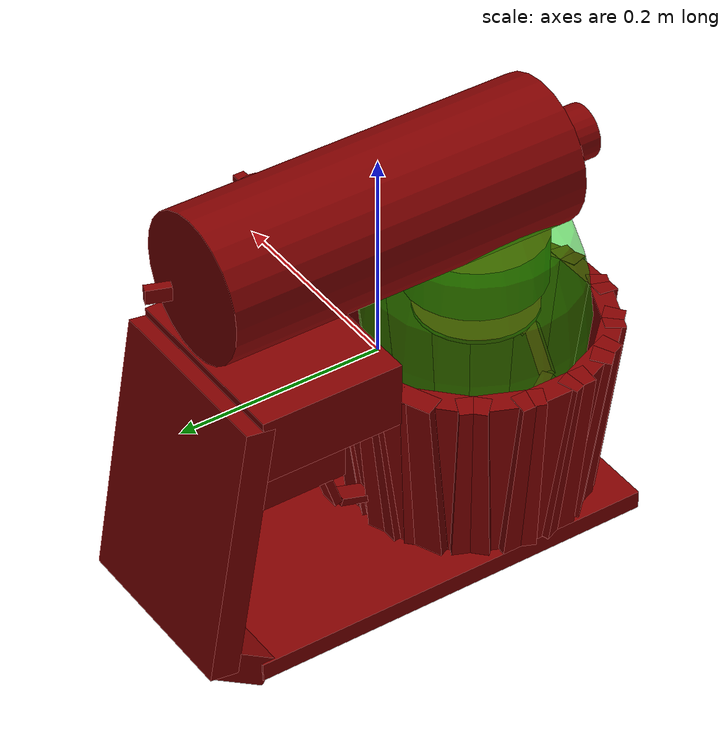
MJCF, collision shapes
<?xml version='1.0' encoding='UTF-8'?>
<mujoco model="model">
  <option timestep="0.002" gravity="0.0 0.0 -9.81"/>
  <compiler angle="radian"/>
  <asset>
    <mesh file="visuals/blender.obj" name="blender_vis"/>
    <mesh file="visuals/bowl.obj" name="bowl_vis"/>
    <mesh file="visuals/button_head_lock.obj" name="button_head_lock_vis"/>
    <mesh file="visuals/head.obj" name="head_vis"/>
    <mesh file="visuals/knob_speed.obj" name="knob_speed_vis"/>
    <mesh file="visuals/Body001.obj" name="Body001_vis"/>
    <texture file="visuals/T_BC001.png" name="Body001_material" type="2d"/>
    <material name="Body001_material" rgba="1 1 1 1.0" texture="Body001_material" shininess="0.5438126623630524" specular="0.3103448502657381"/>
    <texture file="visuals/T_BC001.png" name="bowl_material" type="2d"/>
    <material name="bowl_material" rgba="1 1 1 1.0" texture="bowl_material" shininess="0.5438126623630524" specular="2"/>
    <texture file="visuals/T_BC001.png" name="head_material" type="2d"/>
    <material name="head_material" rgba="1 1 1 1.0" texture="head_material" shininess="0.5438126623630524" specular="0.3103448502657381"/>
    <texture file="visuals/T_BC001.png" name="blender_material" type="2d"/>
    <material name="blender_material" rgba="1 1 1 1.0" texture="blender_material" shininess="0.5438126623630524" specular="3"/>
    <texture file="visuals/T_BC001.png" name="button_head_lock_material" type="2d"/>
    <material name="button_head_lock_material" rgba="1 1 1 1.0" texture="button_head_lock_material" shininess="0.5438126623630524" specular="0.3103448502657381"/>
    <texture file="visuals/T_BC001.png" name="knob_speed_material" type="2d"/>
    <material name="knob_speed_material" rgba="1 1 1 1.0" texture="knob_speed_material" shininess="0.5438126623630524" specular="0.3103448502657381"/>
  </asset>
  <default>
    <default class="visual">
      <geom conaffinity="0" contype="0" group="1" type="mesh"/>
    </default>
    <default class="collision">
      <geom group="0" rgba="0.5 0 0 0.5"/>
    </default>
    <default class="spawn">
      <geom group="0" rgba="1 1 1 0.5" contype="0" conaffinity="0"/>
      <site group="0" rgba="1 1 1 0.5"/>
    </default>
    <default class="region">
      <geom group="1" conaffinity="0" contype="0" rgba="0 1 0 0"/>
    </default>
  </default>
  <worldbody>
    <body>
      <body name="object">
        <geom mesh="Body001_vis" type="mesh" solimp="0.998 0.998 0.001" solref="0.001 1" friction="0.95 0.3 0.1" class="visual" material="Body001_material"/>
        <geom type="box" pos="-0.002942721825093031 -0.017991993576288223 -0.21097666025161743" size="0.0929960384964943 0.20198537409305573 0.009089101105928421" quat="1.0 0.0 0.0 0.0" class="collision"/>
        <geom type="box" pos="-0.0025546422693878412 0.20102444291114807 -0.0689326748251915" size="0.0926085039973259 0.014161109924316406 0.12825751304626465" quat="0.9964488744735718 0.0841996818780899 -1.869608840615624e-17 -1.5615924645510353e-24" class="collision"/>
        <geom type="box" pos="-0.0023968806490302086 0.10851084440946579 0.03293196111917496" size="0.0924503430724144 0.06867153197526932 0.03192940354347229" quat="1.0 0.0 0.0 0.0" class="collision"/>
        <geom type="box" pos="-0.0025546422693878412 0.20204387605190277 -0.19789177179336548" size="0.0914422869682312 0.01416111085563898 0.031224068254232407" quat="0.8828450441360474 -0.4696643650531769 -1.3570199704419878e-16 2.027896302836424e-17" class="collision"/>
        <geom type="box" pos="-0.0025546422693878412 0.13615544140338898 -0.01499311625957489" size="0.08866823464632034 0.04129500314593315 0.016375279054045677" quat="1.0 0.0 0.0 0.0" class="collision"/>
        <body name="bowl">
          <geom mesh="bowl_vis" type="mesh" solimp="0.998 0.998 0.001" solref="0.001 1" friction="0.95 0.3 0.1" class="visual" material="bowl_material"/>
          <geom type="box" pos="4.276633262634277e-06 0.00982824806123972 -0.09855605661869049" size="0.03837154060602188 0.009942335076630116 0.09084977209568024" quat="0.9979614615440369 -0.06381987035274506 0.0 0.0" class="collision"/>
          <geom type="box" pos="4.276633262634277e-06 -0.20919746160507202 -0.09910205006599426" size="0.03837154060602188 0.009942335076630116 0.09084977209568024" quat="1.943102603263469e-07 -1.2426191631220718e-08 -0.9979614615440369 -0.06381989270448685" class="collision"/>
          <geom type="box" pos="-0.10774680972099304 -0.10068933665752411 -0.099004827439785" size="0.03837154060602188 0.009942334145307541 0.09084976464509964" quat="0.04512753337621689 0.7056650519371033 0.7056655883789062 0.04512733966112137" class="collision"/>
          <geom type="box" pos="0.10647398233413696 -0.10068932175636292 -0.09884026646614075" size="0.03837154060602188 0.009942335076630116 0.09084977209568024" quat="0.7056653499603271 -0.04512745514512062 0.04512745514512062 -0.7056652307510376" class="collision"/>
          <geom type="box" pos="0.07420619577169418 -0.17860201001167297 -0.09898456186056137" size="0.03837154060602188 0.009942334145307541 0.09084977209568024" quat="0.3706315755844116 -0.023701976984739304 0.05925530940294266 -0.9265847206115723" class="collision"/>
          <geom type="box" pos="-0.07389778643846512 -0.023091517388820648 -0.09892871975898743" size="0.03837154060602188 0.009942334145307541 0.09084976464509964" quat="0.059255219995975494 0.926584780216217 0.3706314265727997 0.0237021055072546" class="collision"/>
          <geom type="box" pos="0.07791674137115479 -0.026487581431865692 -0.09898452460765839" size="0.03837154060602188 0.009942333213984966 0.09084976464509964" quat="0.058659687638282776 0.9172704219818115 -0.39311835169792175 -0.02513984777033329" class="collision"/>
          <geom type="box" pos="-0.07841555029153824 -0.17537426948547363 -0.09907450526952744" size="0.03837154060602188 0.009942333213984966 0.09084977209568024" quat="0.39311814308166504 -0.02513999119400978 -0.058659665286540985 0.9172704815864563" class="collision"/>
          <geom type="cylinder" pos="4.276633262634277e-06 -0.1009426862001419 -0.1919989287853241" size="0.07816345244646072 0.005113876890391111" quat="1.0 0.0 0.0 0.0" class="collision"/>
          <geom type="box" pos="-0.0011668616207316518 0.05954327434301376 -0.11259269714355469" size="0.009522397071123123 0.003930070903152227 0.034882139414548874" quat="0.9874767065048218 -0.15776482224464417 3.5030827626379805e-17 4.60439887690594e-24" class="collision"/>
          <geom type="box" pos="-0.0011668616207316518 0.048646729439496994 -0.054259251803159714" size="0.009522397071123123 0.0031111417338252068 0.02426467090845108" quat="0.8980101346969604 0.4399747848510742 -9.769405374901203e-17 2.2198020491556395e-23" class="collision"/>
          <geom type="box" pos="-0.0011668616207316518 0.0239186380058527 -0.15302513539791107" size="0.009522397071123123 0.0036734919995069504 0.022242942824959755" quat="1.5712855372385093e-07 -8.69119531898832e-08 -0.5904467105865479 -0.807076632976532" class="collision"/>
          <geom type="box" pos="-0.042982615530490875 0.001279979944229126 -0.09855605661869049" size="0.03837154060602188 0.009942334145307541 0.09084977209568024" quat="0.977766215801239 -0.06252837926149368 -0.012774085626006126 0.1997504085302353" class="collision"/>
          <geom type="box" pos="0.042922742664813995 -0.20019590854644775 -0.09910205006599426" size="0.03837154060602188 0.009942335076630116 0.09084976464509964" quat="0.012774284929037094 0.1997503936290741 -0.977766215801239 -0.06252838671207428" class="collision"/>
          <geom type="box" pos="-0.09875320643186569 -0.14264386892318726 -0.099004827439785" size="0.03837154060602188 0.009942334145307541 0.09084977209568024" quat="0.035181716084480286 0.5501397252082825 0.8326303362846375 0.05324677750468254" class="collision"/>
          <geom type="box" pos="0.09830275923013687 -0.058623056858778 -0.09884026646614075" size="0.03837154433131218 0.009942335076630116 0.09084977209568024" quat="0.8326300978660583 -0.0532468780875206 0.035181593149900436 -0.5501401424407959" class="collision"/>
          <geom type="box" pos="0.09917908161878586 -0.14294879138469696 -0.09898456186056137" size="0.03837154060602188 0.009942334145307541 0.09084977209568024" quat="0.5485950112342834 -0.035082779824733734 0.053312044590711594 -0.8336489200592041" class="collision"/>
          <geom type="box" pos="-0.09805148839950562 -0.05798758938908577 -0.09892871975898743" size="0.03837154060602188 0.009942334145307541 0.09084976464509964" quat="0.05331192910671234 0.8336490392684937 0.5485948324203491 0.03508288785815239" class="collision"/>
          <geom type="box" pos="0.042930614203214645 -0.0015674680471420288 -0.09898452460765839" size="0.03837154060602188 0.009942333213984966 0.09084976464509964" quat="0.06250457465648651 0.9773940443992615 -0.2015635222196579 -0.012889870442450047" class="collision"/>
          <geom type="box" pos="-0.04247954487800598 -0.19984036684036255 -0.09907450526952744" size="0.03837154433131218 0.009942334145307541 0.09084977209568024" quat="0.20156341791152954 -0.012890021316707134 -0.06250458210706711 0.9773941040039062" class="collision"/>
          <geom name="reg_bowl" type="ellipsoid" pos="-6.433041562559083e-05 -0.10340321809053421 -0.006527510937303305" size="0.10161721706390381 0.10355360805988312 0.15638050436973572" rgba="0 1 0 0.5" class="region"/>
        </body>
        <body name="head">
          <joint axis="-1.0 0.0 0.0" pos="4.276633262634277e-06 0.17238491773605347 0.07336260378360748" limited="true" name="head_joint" range="0.0 1.5707963267948966" type="hinge" damping="1" frictionloss="1" armature=".01" stiffness="0.05"/>
          <geom mesh="head_vis" type="mesh" solimp="0.998 0.998 0.001" solref="0.001 1" friction="0.95 0.3 0.1" class="visual" material="head_material"/>
          <geom type="cylinder" pos="4.276633262634277e-06 -0.19312843680381775 0.1461166888475418" size="0.025266218930482864 0.021115923300385475" quat="0.7071067094802856 -0.70710688829422 0.0 0.0" class="collision"/>
          <geom type="cylinder" pos="4.276633262634277e-06 -0.10028975456953049 0.06462368369102478" size="0.06663016229867935 0.025263486430048943" quat="1.0 -5.960464477539063e-08 0.0 0.0" class="collision"/>
          <geom type="cylinder" pos="-0.0026897722855210304 0.010272250510752201 0.14988835155963898" size="0.0685434490442276 0.17514696717262268" quat="0.7071067094802856 -0.70710688829422 0.0 0.0" class="collision"/>
          <body name="blender">
            <joint axis="0.0 -2.842170943040401e-14 1.0" pos="-0.005116631276905537 -0.09995909780263901 0.03510509431362152" limited="false" name="blender_joint" range="0 360" type="hinge" damping="1" frictionloss="1" armature=".01" stiffness="0.05"/>
            <geom mesh="blender_vis" type="mesh" solimp="0.998 0.998 0.001" solref="0.001 1" friction="0.95 0.3 0.1" class="visual" material="blender_material"/>
            <geom type="cylinder" pos="-0.004895726218819618 -0.10003939270973206 0.02244243398308754" size="0.012292686849832535 0.010325752198696136" quat="1.0 -5.960464477539063e-08 0.0 0.0" class="collision"/>
            <geom type="cylinder" pos="-0.004895726218819618 -0.10003939270973206 0.011190238408744335" size="0.056904375553131104 0.0020433019381016493" quat="1.0 -5.960464477539063e-08 0.0 0.0" class="collision"/>
            <geom type="box" pos="-0.00451887771487236 -0.10064661502838135 0.0007687946781516075" size="0.006084819789975882 0.005328639410436153 0.012103812769055367" quat="1.0 0.0 0.0 0.0" class="collision"/>
            <geom type="box" pos="0.005811840295791626 -0.11983755975961685 -0.018131479620933533" size="0.006084819789975882 0.005328639876097441 0.01583249121904373" quat="0.8145591020584106 -0.5800806283950806 -1.2880377395664956e-16 8.343082074899711e-24" class="collision"/>
            <geom type="box" pos="0.005823131650686264 -0.09003815054893494 -0.1501443088054657" size="0.005237325094640255 0.005328640341758728 0.019699113443493843" quat="0.7551144957542419 -0.5745607018470764 0.2701469361782074 -0.16340966522693634" class="collision"/>
            <geom type="box" pos="-0.07198411226272583 -0.09888734668493271 -0.07864266633987427" size="0.006084819789975882 0.005328639410436153 0.024810034781694412" quat="0.49731895327568054 -0.867567777633667 -1.926387179605754e-16 -2.2768423724016362e-23" class="collision"/>
            <geom type="box" pos="-0.03367891162633896 -0.04913382977247238 -0.1167696863412857" size="0.006084820255637169 0.005328639410436153 0.024810031056404114" quat="0.4078522324562073 -0.7114940881729126 0.49643728137016296 -0.28457459807395935" class="collision"/>
            <geom type="box" pos="0.00312606617808342 -0.05862608924508095 -0.13638517260551453" size="0.0051918732933700085 0.004717028234153986 0.024810034781694412" quat="0.14561611413955688 -0.5117025375366211 0.6257711052894592 -0.5704094767570496" class="collision"/>
            <geom type="box" pos="-0.03464233875274658 -0.1480647623538971 -0.04423900693655014" size="0.006084819789975882 0.005328639410436153 0.024810034781694412" quat="0.3302362859249115 -0.786643922328949 -0.3130199611186981 0.4173174202442169" class="collision"/>
            <geom type="box" pos="-0.06076320260763168 -0.0646599531173706 -0.09680916368961334" size="0.006084820721298456 0.005328640807420015 0.013813997618854046" quat="0.47956910729408264 -0.836603581905365 0.13167962431907654 -0.22971364855766296" class="collision"/>
            <geom type="box" pos="-0.06506101042032242 -0.13063740730285645 -0.06004895269870758" size="0.006084820255637169 0.005328640807420015 0.013813999481499195" quat="0.4896605312824249 -0.8542078137397766 -0.08694063872098923 0.1516670137643814" class="collision"/>
            <geom type="box" pos="-0.0051255542784929276 -0.14299100637435913 -0.028562873601913452" size="0.006084820721298456 0.005328640807420015 0.013813999481499195" quat="0.642673909664154 0.1144571602344513 0.49150794744491577 0.5764457583427429" class="collision"/>
          </body>
          <body name="button_head_lock">
            <joint axis="0.0 -2.842170943040401e-14 1.0" pos="-0.0024068085476756096 0.1127920001745224 0.13620346784591675" limited="true" name="button_head_lock_joint" range="0.0 0.6981317007977318" type="hinge" damping="1" frictionloss="1" armature=".01" stiffness="-0.1" springref="0.1"/>
            <geom mesh="button_head_lock_vis" type="mesh" solimp="0.998 0.998 0.001" solref="0.001 1" friction="0.95 0.3 0.1" class="visual" material="button_head_lock_material"/>
            <geom class="collision" type="box" pos="0.02645915187895298 0.20081734657287598 0.133352592587471" size="0.004393617156893015 0.011648655869066715 0.007082652300596237" quat="0.9853608012199402 0.0 0.0 -0.17048195004463196" name="button_head_lock_main"/>
          </body>
          <body name="knob_speed">
            <joint axis="-1.0 0.0 0.0" pos="0.10116399079561234 0.06516224145889282 0.12572991847991943" limited="true" name="knob_speed_joint" range="-0.9599310885968813 3.9269908169872414" type="hinge" damping="0.05" armature="0.001"/>
            <geom mesh="knob_speed_vis" type="mesh" solimp="0.998 0.998 0.001" solref="0.001 1" friction="0.95 0.3 0.1" class="visual" material="knob_speed_material"/>
            <geom type="cylinder" pos="0.09500987082719803 0.06498560309410095 0.12574519217014313" size="0.026774827390909195 0.005145312286913395" quat="0.49999669194221497 -0.5000000596046448 0.5000031590461731 -0.5000000596046448" class="collision"/>
            <geom class="collision" type="box" pos="0.10688704997301102 0.06526175886392593 0.1252596229314804" size="0.008506210520863533 0.005462403409183025 0.0198409091681242" quat="1.0 0.0 0.0 0.0" name="knob_speed_main"/>
          </body>
        </body>
        <geom class="region" name="reg_main" type="box" pos="-0.0016850773245096207 0.005229532718658447 0.0" size="0.09366583621501923 0.22567082738876343 0.22070438957214356"/>
      </body>
    </body>
  </worldbody>
  <actuator>
    <motor name="head_joint_actuator" joint="head_joint" gear="50"/>
    <motor name="blender_joint_actuator" joint="blender_joint" gear="10"/>
    <motor name="button_head_lock_joint_actuator" joint="button_head_lock_joint" gear="10"/>
    <motor name="knob_speed_joint_actuator" joint="knob_speed_joint" gear="10"/>
  </actuator>
</mujoco>
